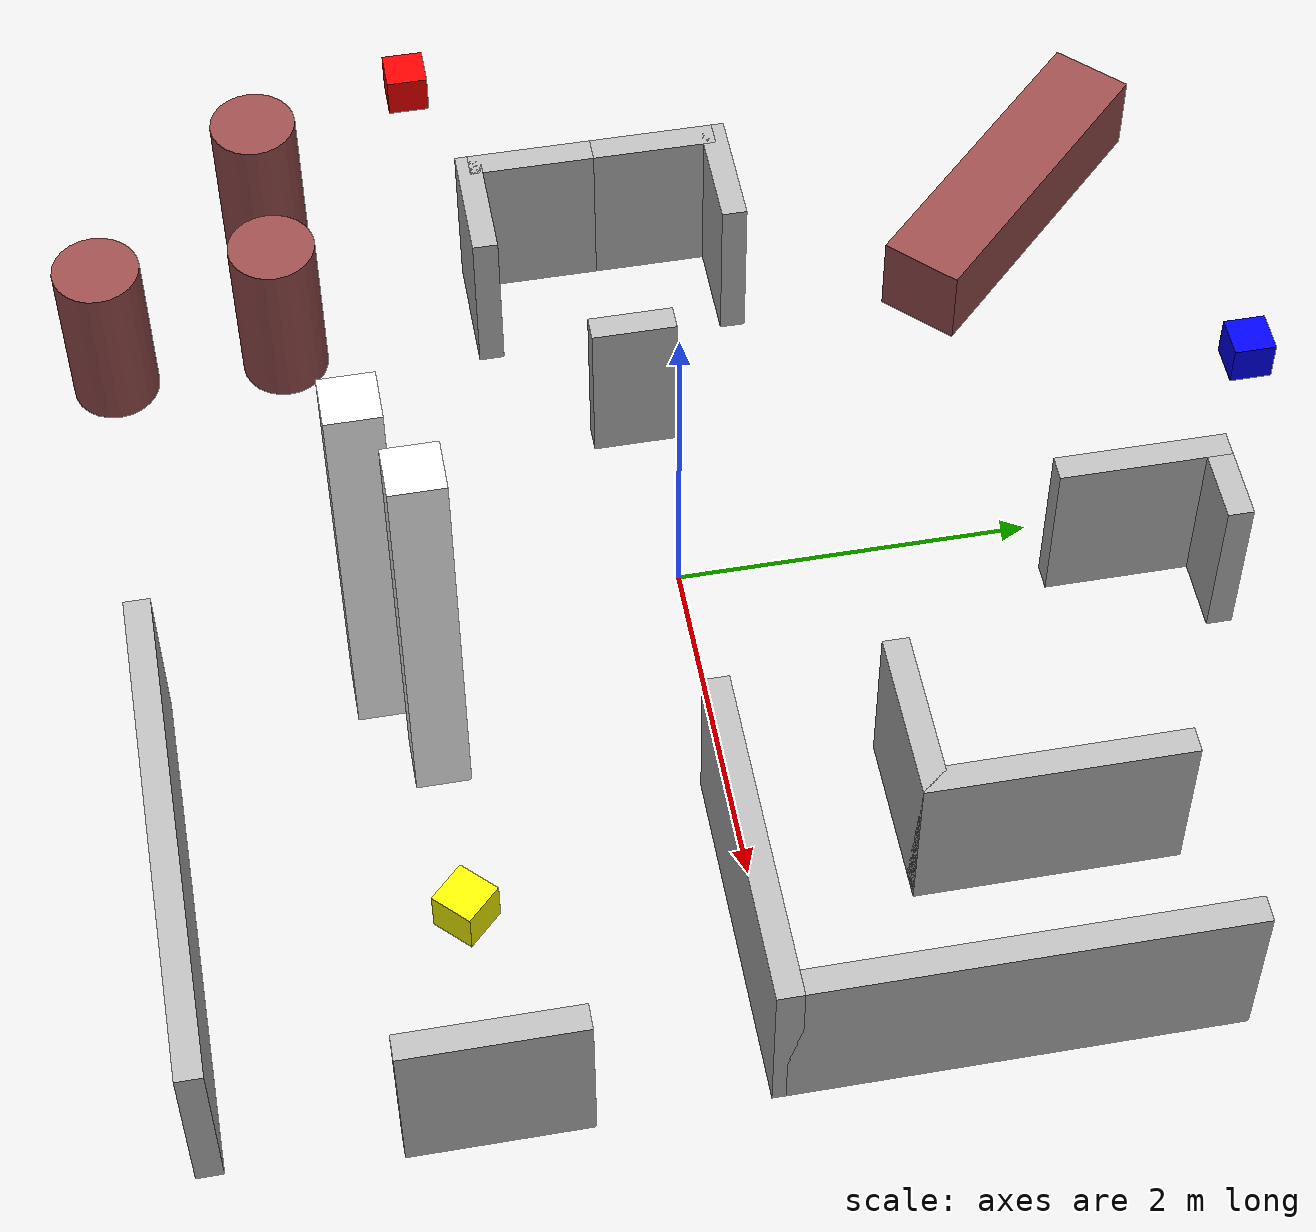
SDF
<sdf version="1.4">
 <world name="default">
  <physics name="1ms" type="ignored">
   <max_step_size>0.001</max_step_size>
   <real_time_factor>1.0</real_time_factor>
  </physics>
  <plugin filename="gz-sim-physics-system" name="gz::sim::systems::Physics"/>
  <plugin filename="gz-sim-user-commands-system" name="gz::sim::systems::UserCommands"/>
  <plugin filename="gz-sim-scene-broadcaster-system" name="gz::sim::systems::SceneBroadcaster"/>
  <plugin filename="gz-sim-sensors-system" name="gz::sim::systems::Sensors">
   <render_engine>ogre2</render_engine>
  </plugin>
  <scene><ambient>0.4 0.4 0.4 1</ambient><background>0.7 0.7 0.7 1</background><shadows>false</shadows></scene>
  <model name="red_box">
   <pose>-4.105 -1.0 0.10 0 0 0</pose>
   <static>true</static>
   <link name="link">
    <visual name="visual">
     <geometry><box><size>0.25 0.25 0.25</size></box></geometry>
     <material><ambient>1.0 0.0 0.0 1</ambient><diffuse>1.0 0.0 0.0 1</diffuse></material>
    </visual>
    <collision name="collision"><geometry><box><size>0.25 0.25 0.25</size></box></geometry></collision>
   </link>
  </model>
  <model name="blue_box">
   <pose>-1 3.6 0.1 0 0 0</pose>
   <static>true</static>
   <link name="link">
    <visual name="visual">
     <geometry><box><size>0.25 0.25 0.25</size></box></geometry>
     <material><ambient>0.0 0.0 1.0 1</ambient><diffuse>0.0 0.0 1.0 1</diffuse></material>
    </visual>
    <collision name="collision"><geometry><box><size>0.25 0.25 0.25</size></box></geometry></collision>
   </link>
  </model>
  <model name="yellow_box">
   <pose>2 -1.5 0.1 0 0 0.785</pose>
   <static>true</static>
   <link name="link">
    <visual name="visual">
     <geometry><box><size>0.25 0.25 0.25</size></box></geometry>
     <material><ambient>1.0 1.0 0.0 1</ambient><diffuse>1.0 1.0 0.0 1</diffuse></material>
    </visual>
    <collision name="collision"><geometry><box><size>0.25 0.25 0.25</size></box></geometry></collision>
   </link>
  </model>
  <model name="wall">
   <pose>1.925 1.675 0.0 0 0 0</pose>
   <static>true</static>
   <link name="link">
    <visual name="visual"><geometry><box><size>0.15 1.5 1</size></box></geometry></visual>
    <collision name="collision"><geometry><box><size>0.15 1.5 1</size></box></geometry></collision>
   </link>
  </model>
  <model name="wall2">
   <pose>1.5 1 0.0 0 0 0</pose>
   <static>true</static>
   <link name="link">
    <visual name="visual"><geometry><box><size>1 0.15 1</size></box></geometry></visual>
    <collision name="collision"><geometry><box><size>1 0.15 1</size></box></geometry></collision>
   </link>
  </model>
  <model name="wall3">
   <pose>3.0 1.25 0.0 0 0 0</pose>
   <static>true</static>
   <link name="link">
    <visual name="visual"><geometry><box><size>0.15 2.5 1</size></box></geometry></visual>
    <collision name="collision"><geometry><box><size>0.15 2.5 1</size></box></geometry></collision>
   </link>
  </model>
  <model name="wall4">
   <pose>2.075 0.0 0.0 0 0 0</pose>
   <static>true</static>
   <link name="link">
    <visual name="visual"><geometry><box><size>2 0.15 1</size></box></geometry></visual>
    <collision name="collision"><geometry><box><size>2 0.15 1</size></box></geometry></collision>
   </link>
  </model>
  <model name="cheapreference1">
   <pose>1.0 -1.5 1.25 0 0 0</pose>
   <static>true</static>
   <link name="link">
    <visual name="visual">
     <geometry><box><size>0.3 0.3 2.5</size></box></geometry>
     <material><ambient>1 1 1 1</ambient><diffuse>1 1 1 1</diffuse></material>
    </visual>
    <collision name="collision"><geometry><box><size>0.3 0.3 2.5</size></box></geometry></collision>
   </link>
  </model>
  <model name="cheapreference2">
   <pose>0.5 -1.75 1.25 0 0 0</pose>
   <static>true</static>
   <link name="link">
    <visual name="visual">
     <geometry><box><size>0.3 0.3 2.5</size></box></geometry>
     <material><ambient>1 1 1 1</ambient><diffuse>1 1 1 1</diffuse></material>
    </visual>
    <collision name="collision"><geometry><box><size>0.3 0.3 2.5</size></box></geometry></collision>
   </link>
  </model>
  <model name="Caja">
   <pose>-2.5 2.5 0.1 0 0 2.356</pose>
   <static>true</static>
   <link name="link">
    <visual name="visual">
     <geometry><box><size>2 0.5 0.5</size></box></geometry>
     <material><ambient>0.6 0.3 0.3 1</ambient><diffuse>0.6 0.3 0.3 1</diffuse></material>
    </visual>
    <collision name="collision"><geometry><box><size>2 0.5 0.5</size></box></geometry></collision>
   </link>
  </model>
  <model name="cylinder2">
   <pose>-2.0 -3 0.5 0 0 0.0</pose>
   <static>true</static>
   <link name="link">
    <visual name="visual">
     <geometry><cylinder><radius>0.25</radius><length>1</length></cylinder></geometry>
     <material><ambient>0.6 0.3 0.3 1</ambient><diffuse>0.6 0.3 0.3 1</diffuse></material>
    </visual>
    <collision name="collision">
     <geometry><cylinder><radius>0.25</radius><length>1</length></cylinder></geometry>
    </collision>
   </link>
  </model>
  <model name="cylinder4">
   <pose>-3 -2 0.5 0 0 0.0</pose>
   <static>true</static>
   <link name="link">
    <visual name="visual">
     <geometry><cylinder><radius>0.25</radius><length>1</length></cylinder></geometry>
     <material><ambient>0.6 0.3 0.3 1</ambient><diffuse>0.6 0.3 0.3 1</diffuse></material>
    </visual>
    <collision name="collision">
     <geometry><cylinder><radius>0.25</radius><length>1</length></cylinder></geometry>
    </collision>
   </link>
  </model>
  <model name="cylinder6">
   <pose>-2 -2 0.5 0 0 0.0</pose>
   <static>true</static>
   <link name="link">
    <visual name="visual">
     <geometry><cylinder><radius>0.25</radius><length>1</length></cylinder></geometry>
     <material><ambient>0.6 0.3 0.3 1</ambient><diffuse>0.6 0.3 0.3 1</diffuse></material>
    </visual>
    <collision name="collision">
     <geometry><cylinder><radius>0.25</radius><length>1</length></cylinder></geometry>
    </collision>
   </link>
  </model>
  <model name="downwall">
   <pose>1.5 -3 0 0 0 1.57</pose>
   <static>true</static>
   <link name="link">
    <visual name="visual"><geometry><box><size>0.15 3 1</size></box></geometry></visual>
    <collision name="collision"><geometry><box><size>0.15 3 1</size></box></geometry></collision>
   </link>
  </model>
  <model name="smallwall">
   <pose>-1.5 0.0 0 0 0 0</pose>
   <static>true</static>
   <link name="link">
    <visual name="visual"><geometry><box><size>0.15 0.5 1</size></box></geometry></visual>
    <collision name="collision"><geometry><box><size>0.15 0.5 1</size></box></geometry></collision>
   </link>
  </model>
  <model name="smallwall2">
   <pose>3.0 -1.5 0 0 0 0</pose>
   <static>true</static>
   <link name="link">
    <visual name="visual"><geometry><box><size>0.15 1 1</size></box></geometry></visual>
    <collision name="collision"><geometry><box><size>0.15 1 1</size></box></geometry></collision>
   </link>
  </model>
  <model name="rwall1">
   <pose>0.0 2.65 0 0 0 0</pose>
   <static>true</static>
   <link name="link">
    <visual name="visual"><geometry><box><size>0.15 1.0 1</size></box></geometry></visual>
    <collision name="collision"><geometry><box><size>0.15 1.0 1</size></box></geometry></collision>
   </link>
  </model>
  <model name="rwall2">
   <pose>0.25 3.075 0 0 0 1.57</pose>
   <static>true</static>
   <link name="link">
    <visual name="visual"><geometry><box><size>0.15 0.5 1</size></box></geometry></visual>
    <collision name="collision"><geometry><box><size>0.15 0.5 1</size></box></geometry></collision>
   </link>
  </model>
  <model name="slashwall1">
   <pose>-2.625 -0.75 0 0 0 1.5708</pose>
   <static>true</static>
   <link name="link">
    <visual name="visual"><geometry><box><size>0.15 0.750 1</size></box></geometry></visual>
    <collision name="collision"><geometry><box><size>0.15 0.750 1</size></box></geometry></collision>
   </link>
  </model>
  <model name="slashwall2">
   <pose>-2.925 -0.375 0 0 0 0</pose>
   <static>true</static>
   <link name="link">
    <visual name="visual"><geometry><box><size>0.15 0.750 1</size></box></geometry></visual>
    <collision name="collision"><geometry><box><size>0.15 0.625 1</size></box></geometry></collision>
   </link>
  </model>
  <model name="slashwall3">
   <pose>-2.925 0.375 0 0 0 0</pose>
   <static>true</static>
   <link name="link">
    <visual name="visual"><geometry><box><size>0.15 0.750 1</size></box></geometry></visual>
    <collision name="collision"><geometry><box><size>0.15 0.750 1</size></box></geometry></collision>
   </link>
  </model>
  <model name="slashwall4">
   <pose>-2.625 0.75 0 0 0 1.5708</pose>
   <static>true</static>
   <link name="link">
    <visual name="visual"><geometry><box><size>0.15 0.750 1</size></box></geometry></visual>
    <collision name="collision"><geometry><box><size>0.15 0.750 1</size></box></geometry></collision>
   </link>
  </model>
 </world>
</sdf>
